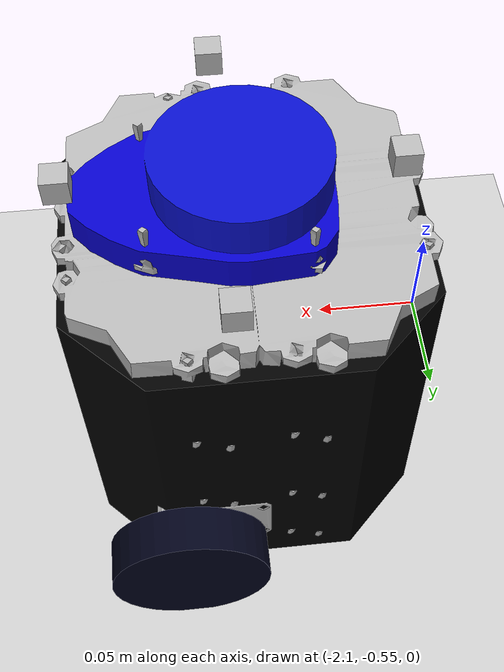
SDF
<sdf version="1.7">
 <world name="default">
  <model name="ground_plane">
   <static>1</static>
   <link name="link">
    <collision name="collision">
     <geometry><plane><normal>0 0 1</normal><size>100 100</size></plane></geometry>
     <surface><friction><ode><mu>100</mu><mu2>50</mu2></ode></friction></surface>
    </collision>
    <visual name="visual">
     <cast_shadows>0</cast_shadows>
     <geometry><plane><normal>0 0 1</normal><size>100 100</size></plane></geometry>
     <material>
      <script><uri>file://media/materials/scripts/gazebo.material</uri><name>Gazebo/Grey</name></script>
     </material>
    </visual>
   </link>
  </model>
  <model name="sonar_bot ">
   <pose>-1.97444 -0.483602 0.008617 7e-05 0.004682 1e-06</pose>
   <link name="base_footprint">
    <inertial>
     <pose>-0.000481 0 0.009979 0 -0 0</pose>
     <mass>0.830745</mass>
     <inertia>
      <ixx>0.0032141</ixx>
      <ixy>-1.22941e-05</ixy>
      <ixz>3.21273e-05</ixz>
      <iyy>0.00315614</iyy>
      <iyz>-5.01209e-06</iyz>
      <izz>0.00304254</izz>
     </inertia>
    </inertial>
    <collision name="base_footprint_fixed_joint_lump__base_link_collision">
     <pose>-0.032 0 0.08 0 -0 0</pose>
     <geometry><box><size>0.14 0.14 0.143</size></box></geometry>
    </collision>
    <collision name="base_footprint_fixed_joint_lump__caster_back_link_collision_1">
     <pose>-0.081 1e-06 0.005 -1.57 0 0</pose>
     <geometry><box><size>0.03 0.009 0.02</size></box></geometry>
    </collision>
    <collision name="base_footprint_fixed_joint_lump__base_sonar_front_collision_1">
     <pose>0.032 0 0.171 0 -0 0</pose>
     <geometry><box><size>0.01 0.01 0.01</size></box></geometry>
    </collision>
    <collision name="base_footprint_fixed_joint_lump__base_sonar_front_collision_2">
     <pose>0.032 0 0.171 0 -0 0</pose>
     <geometry><cylinder><length>0.0315</length><radius>0.055</radius></cylinder></geometry>
    </collision>
    <collision name="base_footprint_fixed_joint_lump__base_sonar_left_collision_1">
     <pose>-0.025 0.06 0.171 0 -0 1.57</pose>
     <geometry><box><size>0.01 0.01 0.01</size></box></geometry>
    </collision>
    <collision name="base_footprint_fixed_joint_lump__base_sonar_left_collision_2">
     <pose>-0.025 0.06 0.171 0 -0 1.57</pose>
     <geometry><cylinder><length>0.0315</length><radius>0.055</radius></cylinder></geometry>
    </collision>
    <collision name="base_footprint_fixed_joint_lump__base_sonar_right_collision_1">
     <pose>-0.025 -0.06 0.171 0 -0 -1.58319</pose>
     <geometry><box><size>0.01 0.01 0.01</size></box></geometry>
    </collision>
    <collision name="base_footprint_fixed_joint_lump__base_sonar_right_collision_2">
     <pose>-0.025 -0.06 0.171 0 -0 -1.58319</pose>
     <geometry><cylinder><length>0.0315</length><radius>0.055</radius></cylinder></geometry>
    </collision>
    <collision name="base_footprint_fixed_joint_lump__base_sonar_rear_collision_1">
     <pose>-0.09 0 0.171 0 -0 3.14</pose>
     <geometry><box><size>0.01 0.01 0.01</size></box></geometry>
    </collision>
    <collision name="base_footprint_fixed_joint_lump__base_sonar_rear_collision_2">
     <pose>-0.09 0 0.171 0 -0 3.14</pose>
     <geometry><cylinder><length>0.0315</length><radius>0.055</radius></cylinder></geometry>
    </collision>
    <visual name="base_footprint_fixed_joint_lump__base_link_visual">
     <pose>-0.032 0 0.01 0 -0 0</pose>
     <geometry>
      <mesh>
       <scale>0.001 0.001 0.001</scale>
       <uri>model://turtlebot3_description/meshes/bases/burger_base.stl</uri>
      </mesh>
     </geometry>
    </visual>
    <visual name="base_footprint_fixed_joint_lump__base_sonar_visual_front">
     <pose>0.032 0 0.171 0 -0 0</pose>
     <geometry><box><size>0.01 0.01 0.01</size></box></geometry>
    </visual>
    <sensor name="TeraRanger" type="ray">
     <visualize>1</visualize>
     <update_rate>50</update_rate>
     <ray>
      <scan>
       <horizontal>
        <samples>10</samples>
        <resolution>1</resolution>
        <min_angle>-0.2</min_angle>
        <max_angle>0.2</max_angle>
       </horizontal>
       <vertical>
        <samples>10</samples>
        <resolution>1</resolution>
        <min_angle>-0.2</min_angle>
        <max_angle>0.2</max_angle>
       </vertical>
      </scan>
      <range><min>0.1</min><max>5</max><resolution>0.05</resolution></range>
     </ray>
     <plugin name="gazebo_ros_range" filename="libgazebo_ros_range.so">
      <ros><remapping>~/out:=/sensor/sonar_front</remapping></ros>
      <gaussianNoise>0.005</gaussianNoise>
      <alwaysOn>1</alwaysOn>
      <updateRate>50</updateRate>
      <topicName>sensor/ir_front</topicName>
      <frameName>base_ir_front</frameName>
      <radiation>INFRARED</radiation>
      <fov>0.5</fov>
     </plugin>
     <pose>0.032 0 0.171 0 -0 0</pose>
    </sensor>
    <visual name="base_footprint_fixed_joint_lump__base_sonar_visual_left">
     <pose>-0.025 0.06 0.171 0 -0 1.57</pose>
     <geometry><box><size>0.01 0.01 0.01</size></box></geometry>
    </visual>
    <sensor name="TeraRanger" type="ray">
     <visualize>1</visualize>
     <update_rate>25</update_rate>
     <ray>
      <scan>
       <horizontal>
        <samples>10</samples>
        <resolution>1</resolution>
        <min_angle>-0.2</min_angle>
        <max_angle>0.2</max_angle>
       </horizontal>
       <vertical>
        <samples>10</samples>
        <resolution>1</resolution>
        <min_angle>-0.2</min_angle>
        <max_angle>0.2</max_angle>
       </vertical>
      </scan>
      <range><min>0.1</min><max>5</max><resolution>0.05</resolution></range>
     </ray>
     <plugin name="gazebo_ros_range" filename="libgazebo_ros_range.so">
      <ros><remapping>~/out:=/sensor/sonar_left</remapping></ros>
      <gaussianNoise>0.005</gaussianNoise>
      <alwaysOn>1</alwaysOn>
      <updateRate>50</updateRate>
      <topicName>sensor/ir_left</topicName>
      <frameName>base_ir_left</frameName>
      <radiation>INFRARED</radiation>
      <fov>0.5</fov>
     </plugin>
     <pose>-0.025 0.06 0.171 0 -0 1.57</pose>
    </sensor>
    <visual name="base_footprint_fixed_joint_lump__base_sonar_visual_right">
     <pose>-0.025 -0.06 0.171 0 -0 -1.58319</pose>
     <geometry><box><size>0.01 0.01 0.01</size></box></geometry>
    </visual>
    <sensor name="TeraRanger" type="ray">
     <visualize>1</visualize>
     <update_rate>25</update_rate>
     <ray>
      <scan>
       <horizontal>
        <samples>10</samples>
        <resolution>1</resolution>
        <min_angle>-0.2</min_angle>
        <max_angle>0.2</max_angle>
       </horizontal>
       <vertical>
        <samples>10</samples>
        <resolution>1</resolution>
        <min_angle>-0.2</min_angle>
        <max_angle>0.2</max_angle>
       </vertical>
      </scan>
      <range><min>0.1</min><max>5</max><resolution>0.05</resolution></range>
     </ray>
     <plugin name="gazebo_ros_range" filename="libgazebo_ros_range.so">
      <ros><remapping>~/out:=/sensor/sonar_right</remapping></ros>
      <gaussianNoise>0.005</gaussianNoise>
      <alwaysOn>1</alwaysOn>
      <updateRate>25</updateRate>
      <topicName>sensor/ir_right</topicName>
      <frameName>base_ir_right</frameName>
      <radiation>INFRARED</radiation>
      <fov>0.5</fov>
     </plugin>
     <pose>-0.025 -0.06 0.171 0 -0 -1.58319</pose>
    </sensor>
    <visual name="base_footprint_fixed_joint_lump__base_sonar_visual_rear">
     <pose>-0.09 0 0.171 0 -0 3.14</pose>
     <geometry><box><size>0.01 0.01 0.01</size></box></geometry>
    </visual>
    <sensor name="TeraRanger" type="ray">
     <visualize>1</visualize>
     <update_rate>50</update_rate>
     <ray>
      <scan>
       <horizontal>
        <samples>10</samples>
        <resolution>1</resolution>
        <min_angle>-0.2</min_angle>
        <max_angle>0.2</max_angle>
       </horizontal>
       <vertical>
        <samples>10</samples>
        <resolution>1</resolution>
        <min_angle>-0.2</min_angle>
        <max_angle>0.2</max_angle>
       </vertical>
      </scan>
      <range><min>0.1</min><max>5</max><resolution>0.05</resolution></range>
     </ray>
     <plugin name="gazebo_ros_range" filename="libgazebo_ros_range.so">
      <ros><remapping>~/out:=/sensor/sonar_rear</remapping></ros>
      <gaussianNoise>0.005</gaussianNoise>
      <alwaysOn>1</alwaysOn>
      <updateRate>25</updateRate>
      <topicName>sensor/ir_rear</topicName>
      <frameName>base_ir_rear</frameName>
      <radiation>INFRARED</radiation>
      <fov>0.5</fov>
     </plugin>
     <pose>-0.09 0 0.171 0 -0 3.14</pose>
    </sensor>
   </link>
   <link name="base_link">
    <inertial>
     <pose>-0.032 0 0.07 0 -0 0</pose>
     <inertia>
      <ixx>0.723974</ixx>
      <ixy>4.6864e-10</ixy>
      <ixz>-1.09526e-08</ixz>
      <iyy>0.723974</iyy>
      <iyz>2.85826e-09</iyz>
      <izz>0.65305</izz>
     </inertia>
     <mass>0.825735</mass>
    </inertial>
    <collision name="base_collision">
     <pose>-0.032 0 0.07 0 -0 0</pose>
     <geometry><box><size>0.14 0.14 0.14</size></box></geometry>
    </collision>
    <visual name="base_visual">
     <pose>-0.032 0 0 0 -0 0</pose>
     <geometry>
      <mesh><uri>model://turtlebot3_burger/meshes/burger_base.dae</uri><scale>0.001 0.001 0.001</scale></mesh>
     </geometry>
    </visual>
   </link>
   <link name="imu_link">
    <sensor name="tb3_imu" type="imu">
     <always_on>1</always_on>
     <update_rate>200</update_rate>
     <imu>
      <angular_velocity>
       <x><noise type="gaussian"><mean>0</mean><stddev>0.0002</stddev></noise></x>
       <y><noise type="gaussian"><mean>0</mean><stddev>0.0002</stddev></noise></y>
       <z><noise type="gaussian"><mean>0</mean><stddev>0.0002</stddev></noise></z>
      </angular_velocity>
      <linear_acceleration>
       <x><noise type="gaussian"><mean>0</mean><stddev>0.017</stddev></noise></x>
       <y><noise type="gaussian"><mean>0</mean><stddev>0.017</stddev></noise></y>
       <z><noise type="gaussian"><mean>0</mean><stddev>0.017</stddev></noise></z>
      </linear_acceleration>
     </imu>
     <plugin name="turtlebot3_imu" filename="libgazebo_ros_imu_sensor.so">
      <ros><remapping>~/out:=imu</remapping></ros>
     </plugin>
    </sensor>
    <inertial>
     <inertia><ixx>1</ixx><ixy>0</ixy><ixz>0</ixz><iyy>1</iyy><iyz>0</iyz><izz>1</izz></inertia>
     <mass>1</mass>
    </inertial>
   </link>
   <link name="base_scan">
    <inertial>
     <pose>-0.02 0 0.161 0 -0 0</pose>
     <inertia><ixx>0.001</ixx><ixy>0</ixy><ixz>0</ixz><iyy>0.001</iyy><iyz>0</iyz><izz>0.001</izz></inertia>
     <mass>0.114</mass>
    </inertial>
    <collision name="lidar_sensor_collision">
     <pose>-0.02 0 0.161 0 -0 0</pose>
     <geometry><cylinder><radius>0.0508</radius><length>0.055</length></cylinder></geometry>
    </collision>
    <visual name="lidar_sensor_visual">
     <pose>-0.032 0 0.171 0 -0 0</pose>
     <geometry>
      <mesh><uri>model://turtlebot3_burger/meshes/lds.dae</uri><scale>0.001 0.001 0.001</scale></mesh>
     </geometry>
    </visual>
    <sensor name="hls_lfcd_lds" type="ray">
     <always_on>1</always_on>
     <visualize>1</visualize>
     <pose>-0.032 0 0.171 0 -0 0</pose>
     <update_rate>5</update_rate>
     <ray>
      <scan>
       <horizontal>
        <samples>360</samples>
        <resolution>1</resolution>
        <min_angle>0</min_angle>
        <max_angle>6.28</max_angle>
       </horizontal>
       <vertical><samples>1</samples><min_angle>0</min_angle><max_angle>0</max_angle></vertical>
      </scan>
      <range><min>0.12</min><max>3.5</max><resolution>0.015</resolution></range>
      <noise><type>gaussian</type><mean>0</mean><stddev>0.01</stddev></noise>
     </ray>
     <plugin name="turtlebot3_laserscan" filename="libgazebo_ros_ray_sensor.so">
      <ros><remapping>~/out:=scan</remapping></ros>
      <output_type>sensor_msgs/LaserScan</output_type>
      <frame_name>base_scan</frame_name>
     </plugin>
    </sensor>
   </link>
   <link name="wheel_left_link">
    <inertial>
     <pose>0 0.08 0.023 -1.57 0 0</pose>
     <inertia>
      <ixx>0.00181582</ixx>
      <ixy>-9.3392e-12</ixy>
      <ixz>1.04909e-11</ixz>
      <iyy>0.00329221</iyy>
      <iyz>5.75694e-11</iyz>
      <izz>0.00181582</izz>
     </inertia>
     <mass>0.0284989</mass>
    </inertial>
    <collision name="wheel_left_collision">
     <pose>0 0.08 0.023 -1.57 0 0</pose>
     <geometry><cylinder><radius>0.033</radius><length>0.018</length></cylinder></geometry>
     <surface>
      <friction>
       <ode><mu>100000</mu><mu2>100000</mu2><fdir1>0 0 0</fdir1><slip1>0</slip1><slip2>0</slip2></ode>
      </friction>
      <contact>
       <ode>
        <soft_cfm>0</soft_cfm>
        <soft_erp>0.2</soft_erp>
        <kp>100000</kp>
        <kd>1</kd>
        <max_vel>0.01</max_vel>
        <min_depth>0.001</min_depth>
       </ode>
      </contact>
     </surface>
    </collision>
    <visual name="wheel_left_visual">
     <pose>0 0.08 0.023 0 -0 0</pose>
     <geometry>
      <mesh><uri>model://turtlebot3_burger/meshes/tire.dae</uri><scale>0.001 0.001 0.001</scale></mesh>
     </geometry>
    </visual>
   </link>
   <link name="wheel_right_link">
    <inertial>
     <pose>0 -0.08 0.023 -1.57 0 0</pose>
     <inertia>
      <ixx>0.00181582</ixx>
      <ixy>-9.3392e-12</ixy>
      <ixz>1.04909e-11</ixz>
      <iyy>0.00329221</iyy>
      <iyz>5.75694e-11</iyz>
      <izz>0.00181582</izz>
     </inertia>
     <mass>0.0284989</mass>
    </inertial>
    <collision name="wheel_right_collision">
     <pose>0 -0.08 0.023 -1.57 0 0</pose>
     <geometry><cylinder><radius>0.033</radius><length>0.018</length></cylinder></geometry>
     <surface>
      <friction>
       <ode><mu>100000</mu><mu2>100000</mu2><fdir1>0 0 0</fdir1><slip1>0</slip1><slip2>0</slip2></ode>
      </friction>
      <contact>
       <ode>
        <soft_cfm>0</soft_cfm>
        <soft_erp>0.2</soft_erp>
        <kp>100000</kp>
        <kd>1</kd>
        <max_vel>0.01</max_vel>
        <min_depth>0.001</min_depth>
       </ode>
      </contact>
     </surface>
    </collision>
    <visual name="wheel_right_visual">
     <pose>0 -0.08 0.023 0 -0 0</pose>
     <geometry>
      <mesh><uri>model://turtlebot3_burger/meshes/tire.dae</uri><scale>0.001 0.001 0.001</scale></mesh>
     </geometry>
    </visual>
   </link>
   <link name="caster_back_link">
    <pose>-0.081 0 -0.004 -1.57 0 0</pose>
    <inertial>
     <mass>0.005</mass>
     <inertia><ixx>0.001</ixx><ixy>0</ixy><ixz>0</ixz><iyy>0.001</iyy><iyz>0</iyz><izz>0.001</izz></inertia>
    </inertial>
    <collision name="collision">
     <geometry><sphere><radius>0.005</radius></sphere></geometry>
     <surface>
      <contact>
       <ode>
        <soft_cfm>0</soft_cfm>
        <soft_erp>0.2</soft_erp>
        <kp>100000</kp>
        <kd>1</kd>
        <max_vel>0.01</max_vel>
        <min_depth>0.001</min_depth>
       </ode>
      </contact>
     </surface>
    </collision>
   </link>
   <joint name="base_joint" type="fixed">
    <parent>base_footprint</parent>
    <child>base_link</child>
    <pose>0 0 0.01 0 -0 0</pose>
   </joint>
   <joint name="wheel_left_joint" type="revolute">
    <parent>base_link</parent>
    <child>wheel_left_link</child>
    <pose>0 0.08 0.023 -1.57 0 0</pose>
    <axis>
     <xyz>0 0 1</xyz>
     <limit><lower>-1e+16</lower><upper>1e+16</upper></limit>
     <dynamics><spring_reference>0</spring_reference><spring_stiffness>0</spring_stiffness></dynamics>
    </axis>
   </joint>
   <joint name="wheel_right_joint" type="revolute">
    <parent>base_link</parent>
    <child>wheel_right_link</child>
    <pose>0 -0.08 0.023 -1.57 0 0</pose>
    <axis>
     <xyz>0 0 1</xyz>
     <limit><lower>-1e+16</lower><upper>1e+16</upper></limit>
     <dynamics><spring_reference>0</spring_reference><spring_stiffness>0</spring_stiffness></dynamics>
    </axis>
   </joint>
   <joint name="caster_back_joint" type="ball"><parent>base_link</parent><child>caster_back_link</child></joint>
   <joint name="imu_joint" type="fixed">
    <parent>base_link</parent>
    <child>imu_link</child>
    <pose>-0.032 0 0.068 0 -0 0</pose>
    <axis><xyz>0 0 1</xyz><limit><lower>-1e+16</lower><upper>1e+16</upper></limit></axis>
   </joint>
   <plugin name="turtlebot3_diff_drive" filename="libgazebo_ros_diff_drive.so">
    <update_rate>30</update_rate>
    <left_joint>wheel_left_joint</left_joint>
    <right_joint>wheel_right_joint</right_joint>
    <wheel_separation>0.160</wheel_separation>
    <wheel_diameter>0.066</wheel_diameter>
    <max_wheel_torque>20</max_wheel_torque>
    <max_wheel_acceleration>1.0</max_wheel_acceleration>
    <command_topic>cmd_vel</command_topic>
    <publish_odom>1</publish_odom>
    <publish_odom_tf>1</publish_odom_tf>
    <publish_wheel_tf>0</publish_wheel_tf>
    <odometry_topic>odom</odometry_topic>
    <odometry_frame>odom</odometry_frame>
    <robot_base_frame>base_footprint</robot_base_frame>
   </plugin>
   <plugin name="turtlebot3_joint_state" filename="libgazebo_ros_joint_state_publisher.so">
    <ros><remapping>~/out:=joint_states</remapping></ros>
    <update_rate>30</update_rate>
    <joint_name>wheel_left_joint</joint_name>
    <joint_name>wheel_right_joint</joint_name>
   </plugin>
   <collision name="lidar_sensor_collision">
    <pose>-0.020 0 0.161 0 0 0</pose>
    <geometry><cylinder><radius>0.0508</radius><length>0.055</length></cylinder></geometry>
   </collision>
   <visual name="lidar_sensor_visual">
    <pose>-0.032 0 0.171 0 0 0</pose>
    <geometry>
     <mesh><uri>model://turtlebot3_burger/meshes/lds.dae</uri><scale>0.001 0.001 0.001</scale></mesh>
    </geometry>
   </visual>
  </model>
 </world>
</sdf>
